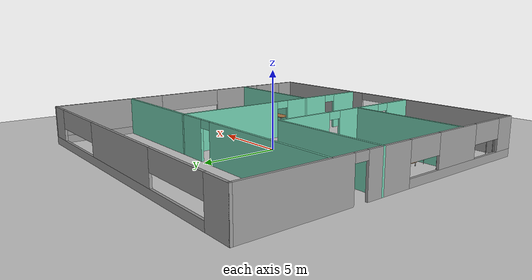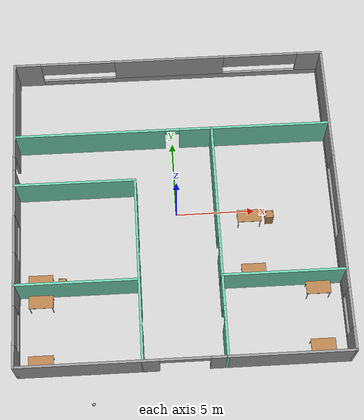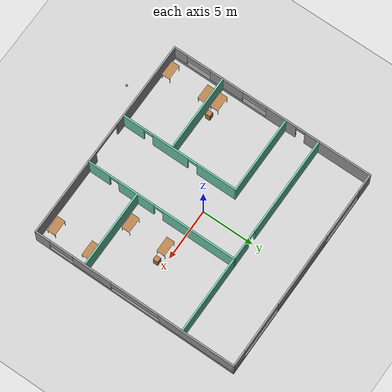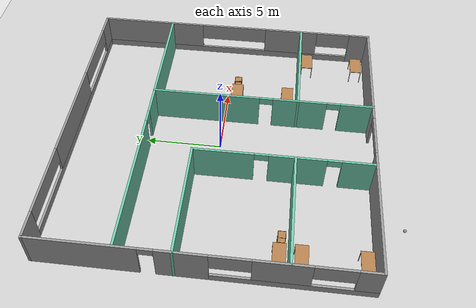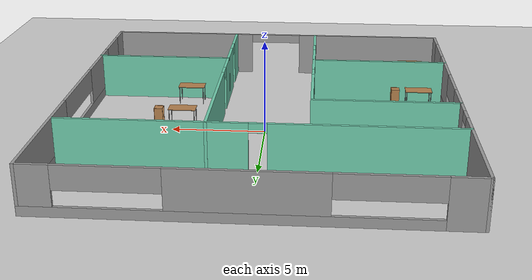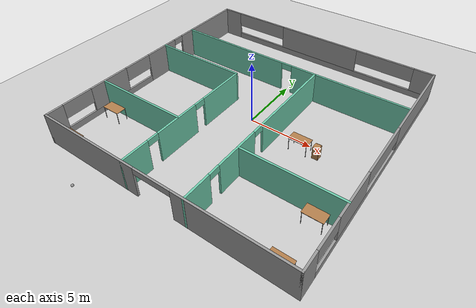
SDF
<sdf version="1.6">
 <world name="default">
  <model name="ground_plane">
   <static>1</static>
   <link name="link">
    <collision name="collision">
     <geometry><plane><normal>0 0 1</normal><size>100 100</size></plane></geometry>
     <surface>
      <contact><collide_bitmask>65535</collide_bitmask></contact>
      <friction><ode><mu>100</mu><mu2>50</mu2></ode></friction>
     </surface>
    </collision>
    <visual name="visual">
     <cast_shadows>0</cast_shadows>
     <geometry><plane><normal>0 0 1</normal><size>100 100</size></plane></geometry>
     <material>
      <script><uri>file://media/materials/scripts/gazebo.material</uri><name>Gazebo/Grey</name></script>
     </material>
    </visual>
   </link>
  </model>
  <model name="Building">
   <pose>0 -0.0025 0 0 -0 0</pose>
   <link name="Wall_0">
    <pose>0 10.0025 0 0 -0 0</pose>
    <visual name="Wall_0_Visual_0">
     <pose>-9.18922 0 1.25 0 -0 0</pose>
     <geometry><box><size>1.77156 0.15 2.5</size></box></geometry>
     <material>
      <script><uri>file://media/materials/scripts/gazebo.material</uri><name>Gazebo/Grey</name></script>
      <ambient>1 1 1 1</ambient>
     </material>
     <meta><layer>0</layer></meta>
    </visual>
    <collision name="Wall_0_Collision_0">
     <geometry><box><size>1.77156 0.15 2.5</size></box></geometry>
     <pose>-9.18922 0 1.25 0 -0 0</pose>
    </collision>
    <visual name="Wall_0_Visual_1">
     <pose>0.885782 0 0.25 0 -0 0</pose>
     <geometry><box><size>18.3784 0.15 0.5</size></box></geometry>
     <material>
      <script><uri>file://media/materials/scripts/gazebo.material</uri><name>Gazebo/Grey</name></script>
      <ambient>1 1 1 1</ambient>
     </material>
     <meta><layer>0</layer></meta>
    </visual>
    <collision name="Wall_0_Collision_1">
     <geometry><box><size>18.3784 0.15 0.5</size></box></geometry>
     <pose>0.885782 0 0.25 0 -0 0</pose>
    </collision>
    <visual name="Wall_0_Visual_2">
     <pose>0.068905 0 1.5 0 -0 0</pose>
     <geometry><box><size>7.14468 0.15 2</size></box></geometry>
     <material>
      <script><uri>file://media/materials/scripts/gazebo.material</uri><name>Gazebo/Grey</name></script>
      <ambient>1 1 1 1</ambient>
     </material>
     <meta><layer>0</layer></meta>
    </visual>
    <collision name="Wall_0_Collision_2">
     <geometry><box><size>7.14468 0.15 2</size></box></geometry>
     <pose>0.068905 0 1.5 0 -0 0</pose>
    </collision>
    <visual name="Wall_0_Visual_3">
     <pose>9.25812 0 1.5 0 -0 0</pose>
     <geometry><box><size>1.63375 0.15 2</size></box></geometry>
     <material>
      <script><uri>file://media/materials/scripts/gazebo.material</uri><name>Gazebo/Grey</name></script>
      <ambient>1 1 1 1</ambient>
     </material>
     <meta><layer>0</layer></meta>
    </visual>
    <collision name="Wall_0_Collision_3">
     <geometry><box><size>1.63375 0.15 2</size></box></geometry>
     <pose>9.25812 0 1.5 0 -0 0</pose>
    </collision>
    <visual name="Wall_0_Visual_4">
     <pose>-5.90344 0 1.9 0 -0 0</pose>
     <geometry><box><size>4.8 0.15 1.2</size></box></geometry>
     <material>
      <script><uri>file://media/materials/scripts/gazebo.material</uri><name>Gazebo/Grey</name></script>
      <ambient>1 1 1 1</ambient>
     </material>
     <meta><layer>0</layer></meta>
    </visual>
    <collision name="Wall_0_Collision_4">
     <geometry><box><size>4.8 0.15 1.2</size></box></geometry>
     <pose>-5.90344 0 1.9 0 -0 0</pose>
    </collision>
    <visual name="Wall_0_Visual_5">
     <pose>6.04125 0 1.9 0 -0 0</pose>
     <geometry><box><size>4.8 0.15 1.2</size></box></geometry>
     <material>
      <script><uri>file://media/materials/scripts/gazebo.material</uri><name>Gazebo/Grey</name></script>
      <ambient>1 1 1 1</ambient>
     </material>
     <meta><layer>0</layer></meta>
    </visual>
    <collision name="Wall_0_Collision_5">
     <geometry><box><size>4.8 0.15 1.2</size></box></geometry>
     <pose>6.04125 0 1.9 0 -0 0</pose>
    </collision>
   </link>
   <link name="Wall_10">
    <pose>-2.5 -4.3225 0 0 -0 1.5708</pose>
    <visual name="Wall_10_Visual_0">
     <pose>-4.63955 0 1.25 0 -0 0</pose>
     <geometry><box><size>2.2209 0.15 2.5</size></box></geometry>
     <material>
      <script><uri>file://media/materials/scripts/gazebo.material</uri><name>Gazebo/Grey</name></script>
      <ambient>0.435294 0.796078 0.67451 1</ambient>
     </material>
     <meta><layer>0</layer></meta>
    </visual>
    <collision name="Wall_10_Collision_0">
     <geometry><box><size>2.2209 0.15 2.5</size></box></geometry>
     <pose>-4.63955 0 1.25 0 -0 0</pose>
    </collision>
    <visual name="Wall_10_Visual_1">
     <pose>-0.81191 0 1.25 0 -0 0</pose>
     <geometry><box><size>3.63439 0.15 2.5</size></box></geometry>
     <material>
      <script><uri>file://media/materials/scripts/gazebo.material</uri><name>Gazebo/Grey</name></script>
      <ambient>0.435294 0.796078 0.67451 1</ambient>
     </material>
     <meta><layer>0</layer></meta>
    </visual>
    <collision name="Wall_10_Collision_1">
     <geometry><box><size>3.63439 0.15 2.5</size></box></geometry>
     <pose>-0.81191 0 1.25 0 -0 0</pose>
    </collision>
    <visual name="Wall_10_Visual_2">
     <pose>3.82764 0 1.25 0 -0 0</pose>
     <geometry><box><size>3.84472 0.15 2.5</size></box></geometry>
     <material>
      <script><uri>file://media/materials/scripts/gazebo.material</uri><name>Gazebo/Grey</name></script>
      <ambient>0.435294 0.796078 0.67451 1</ambient>
     </material>
     <meta><layer>0</layer></meta>
    </visual>
    <collision name="Wall_10_Collision_2">
     <geometry><box><size>3.84472 0.15 2.5</size></box></geometry>
     <pose>3.82764 0 1.25 0 -0 0</pose>
    </collision>
    <visual name="Wall_10_Visual_3">
     <pose>-3.0791 0 2.25 0 -0 0</pose>
     <geometry><box><size>0.9 0.15 0.5</size></box></geometry>
     <material>
      <script><uri>file://media/materials/scripts/gazebo.material</uri><name>Gazebo/Grey</name></script>
      <ambient>0.435294 0.796078 0.67451 1</ambient>
     </material>
     <meta><layer>0</layer></meta>
    </visual>
    <collision name="Wall_10_Collision_3">
     <geometry><box><size>0.9 0.15 0.5</size></box></geometry>
     <pose>-3.0791 0 2.25 0 -0 0</pose>
    </collision>
    <visual name="Wall_10_Visual_4">
     <pose>1.45528 0 2.25 0 -0 0</pose>
     <geometry><box><size>0.9 0.15 0.5</size></box></geometry>
     <material>
      <script><uri>file://media/materials/scripts/gazebo.material</uri><name>Gazebo/Grey</name></script>
      <ambient>0.435294 0.796078 0.67451 1</ambient>
     </material>
     <meta><layer>0</layer></meta>
    </visual>
    <collision name="Wall_10_Collision_4">
     <geometry><box><size>0.9 0.15 0.5</size></box></geometry>
     <pose>1.45528 0 2.25 0 -0 0</pose>
    </collision>
   </link>
   <link name="Wall_12">
    <pose>2.5 -2.5775 0 0 -0 1.5708</pose>
    <visual name="Wall_12_Visual_0">
     <pose>-6.37071 0 1.25 0 -0 0</pose>
     <geometry><box><size>2.25858 0.15 2.5</size></box></geometry>
     <material>
      <script><uri>file://media/materials/scripts/gazebo.material</uri><name>Gazebo/Grey</name></script>
      <ambient>0.435294 0.796078 0.67451 1</ambient>
     </material>
     <meta><layer>0</layer></meta>
    </visual>
    <collision name="Wall_12_Collision_0">
     <geometry><box><size>2.25858 0.15 2.5</size></box></geometry>
     <pose>-6.37071 0 1.25 0 -0 0</pose>
    </collision>
    <visual name="Wall_12_Visual_1">
     <pose>-2.52526 0 1.25 0 -0 0</pose>
     <geometry><box><size>3.63232 0.15 2.5</size></box></geometry>
     <material>
      <script><uri>file://media/materials/scripts/gazebo.material</uri><name>Gazebo/Grey</name></script>
      <ambient>0.435294 0.796078 0.67451 1</ambient>
     </material>
     <meta><layer>0</layer></meta>
    </visual>
    <collision name="Wall_12_Collision_1">
     <geometry><box><size>3.63232 0.15 2.5</size></box></geometry>
     <pose>-2.52526 0 1.25 0 -0 0</pose>
    </collision>
    <visual name="Wall_12_Visual_2">
     <pose>3.84545 0 1.25 0 -0 0</pose>
     <geometry><box><size>7.30909 0.15 2.5</size></box></geometry>
     <material>
      <script><uri>file://media/materials/scripts/gazebo.material</uri><name>Gazebo/Grey</name></script>
      <ambient>0.435294 0.796078 0.67451 1</ambient>
     </material>
     <meta><layer>0</layer></meta>
    </visual>
    <collision name="Wall_12_Collision_2">
     <geometry><box><size>7.30909 0.15 2.5</size></box></geometry>
     <pose>3.84545 0 1.25 0 -0 0</pose>
    </collision>
    <visual name="Wall_12_Visual_3">
     <pose>-4.79142 0 2.25 0 -0 0</pose>
     <geometry><box><size>0.9 0.15 0.5</size></box></geometry>
     <material>
      <script><uri>file://media/materials/scripts/gazebo.material</uri><name>Gazebo/Grey</name></script>
      <ambient>0.435294 0.796078 0.67451 1</ambient>
     </material>
     <meta><layer>0</layer></meta>
    </visual>
    <collision name="Wall_12_Collision_3">
     <geometry><box><size>0.9 0.15 0.5</size></box></geometry>
     <pose>-4.79142 0 2.25 0 -0 0</pose>
    </collision>
    <visual name="Wall_12_Visual_4">
     <pose>-0.259093 0 2.25 0 -0 0</pose>
     <geometry><box><size>0.9 0.15 0.5</size></box></geometry>
     <material>
      <script><uri>file://media/materials/scripts/gazebo.material</uri><name>Gazebo/Grey</name></script>
      <ambient>0.435294 0.796078 0.67451 1</ambient>
     </material>
     <meta><layer>0</layer></meta>
    </visual>
    <collision name="Wall_12_Collision_4">
     <geometry><box><size>0.9 0.15 0.5</size></box></geometry>
     <pose>-0.259093 0 2.25 0 -0 0</pose>
    </collision>
   </link>
   <link name="Wall_14">
    <collision name="Wall_14_Collision">
     <geometry><box><size>7.65 0.15 2.5</size></box></geometry>
     <pose>0 0 1.25 0 -0 0</pose>
    </collision>
    <visual name="Wall_14_Visual">
     <pose>0 0 1.25 0 -0 0</pose>
     <geometry><box><size>7.65 0.15 2.5</size></box></geometry>
     <material>
      <script><uri>file://media/materials/scripts/gazebo.material</uri><name>Gazebo/Grey</name></script>
      <ambient>0.435294 0.796078 0.67451 1</ambient>
     </material>
     <meta><layer>0</layer></meta>
    </visual>
    <pose>-6.25 1.5025 0 0 -0 0</pose>
   </link>
   <link name="Wall_16">
    <collision name="Wall_16_Collision">
     <geometry><box><size>7.65 0.15 2.5</size></box></geometry>
     <pose>0 0 1.25 0 -0 0</pose>
    </collision>
    <visual name="Wall_16_Visual">
     <pose>0 0 1.25 0 -0 0</pose>
     <geometry><box><size>7.65 0.15 2.5</size></box></geometry>
     <material>
      <script><uri>file://media/materials/scripts/gazebo.material</uri><name>Gazebo/Grey</name></script>
      <ambient>0.435294 0.796078 0.67451 1</ambient>
     </material>
     <meta><layer>0</layer></meta>
    </visual>
    <pose>-6.25 -4.9975 0 0 -0 0</pose>
   </link>
   <link name="Wall_18">
    <collision name="Wall_18_Collision">
     <geometry><box><size>7.65 0.15 2.5</size></box></geometry>
     <pose>0 0 1.25 0 -0 0</pose>
    </collision>
    <visual name="Wall_18_Visual">
     <pose>0 0 1.25 0 -0 0</pose>
     <geometry><box><size>7.65 0.15 2.5</size></box></geometry>
     <material>
      <script><uri>file://media/materials/scripts/gazebo.material</uri><name>Gazebo/Grey</name></script>
      <ambient>0.435294 0.796078 0.67451 1</ambient>
     </material>
     <meta><layer>0</layer></meta>
    </visual>
    <pose>6.25 -4.9975 0 0 -0 0</pose>
   </link>
   <link name="Wall_2">
    <pose>-10 0.0025 0 0 0 -1.5708</pose>
    <visual name="Wall_2_Visual_0">
     <pose>-6.7625 0 1.25 0 -0 0</pose>
     <geometry><box><size>6.625 0.15 2.5</size></box></geometry>
     <material>
      <script><uri>file://media/materials/scripts/gazebo.material</uri><name>Gazebo/Grey</name></script>
      <ambient>1 1 1 1</ambient>
     </material>
     <meta><layer>0</layer></meta>
    </visual>
    <collision name="Wall_2_Collision_0">
     <geometry><box><size>6.625 0.15 2.5</size></box></geometry>
     <pose>-6.7625 0 1.25 0 -0 0</pose>
    </collision>
    <visual name="Wall_2_Visual_1">
     <pose>-1.02199 0 1.25 0 -0 0</pose>
     <geometry><box><size>3.05601 0.15 2.5</size></box></geometry>
     <material>
      <script><uri>file://media/materials/scripts/gazebo.material</uri><name>Gazebo/Grey</name></script>
      <ambient>1 1 1 1</ambient>
     </material>
     <meta><layer>0</layer></meta>
    </visual>
    <collision name="Wall_2_Collision_1">
     <geometry><box><size>3.05601 0.15 2.5</size></box></geometry>
     <pose>-1.02199 0 1.25 0 -0 0</pose>
    </collision>
    <visual name="Wall_2_Visual_2">
     <pose>5.29051 0 0.25 0 -0 0</pose>
     <geometry><box><size>9.56899 0.15 0.5</size></box></geometry>
     <material>
      <script><uri>file://media/materials/scripts/gazebo.material</uri><name>Gazebo/Grey</name></script>
      <ambient>1 1 1 1</ambient>
     </material>
     <meta><layer>0</layer></meta>
    </visual>
    <collision name="Wall_2_Collision_2">
     <geometry><box><size>9.56899 0.15 0.5</size></box></geometry>
     <pose>5.29051 0 0.25 0 -0 0</pose>
    </collision>
    <visual name="Wall_2_Visual_3">
     <pose>4.58465 0 1.5 0 -0 0</pose>
     <geometry><box><size>3.35728 0.15 2</size></box></geometry>
     <material>
      <script><uri>file://media/materials/scripts/gazebo.material</uri><name>Gazebo/Grey</name></script>
      <ambient>1 1 1 1</ambient>
     </material>
     <meta><layer>0</layer></meta>
    </visual>
    <collision name="Wall_2_Collision_3">
     <geometry><box><size>3.35728 0.15 2</size></box></geometry>
     <pose>4.58465 0 1.5 0 -0 0</pose>
    </collision>
    <visual name="Wall_2_Visual_4">
     <pose>9.36914 0 1.5 0 -0 0</pose>
     <geometry><box><size>1.41171 0.15 2</size></box></geometry>
     <material>
      <script><uri>file://media/materials/scripts/gazebo.material</uri><name>Gazebo/Grey</name></script>
      <ambient>1 1 1 1</ambient>
     </material>
     <meta><layer>0</layer></meta>
    </visual>
    <collision name="Wall_2_Collision_4">
     <geometry><box><size>1.41171 0.15 2</size></box></geometry>
     <pose>9.36914 0 1.5 0 -0 0</pose>
    </collision>
    <visual name="Wall_2_Visual_5">
     <pose>1.70601 0 1.9 0 -0 0</pose>
     <geometry><box><size>2.4 0.15 1.2</size></box></geometry>
     <material>
      <script><uri>file://media/materials/scripts/gazebo.material</uri><name>Gazebo/Grey</name></script>
      <ambient>1 1 1 1</ambient>
     </material>
     <meta><layer>0</layer></meta>
    </visual>
    <collision name="Wall_2_Collision_5">
     <geometry><box><size>2.4 0.15 1.2</size></box></geometry>
     <pose>1.70601 0 1.9 0 -0 0</pose>
    </collision>
    <visual name="Wall_2_Visual_6">
     <pose>7.46329 0 1.9 0 -0 0</pose>
     <geometry><box><size>2.4 0.15 1.2</size></box></geometry>
     <material>
      <script><uri>file://media/materials/scripts/gazebo.material</uri><name>Gazebo/Grey</name></script>
      <ambient>1 1 1 1</ambient>
     </material>
     <meta><layer>0</layer></meta>
    </visual>
    <collision name="Wall_2_Collision_6">
     <geometry><box><size>2.4 0.15 1.2</size></box></geometry>
     <pose>7.46329 0 1.9 0 -0 0</pose>
    </collision>
    <visual name="Wall_2_Visual_7">
     <pose>-3 0 2.25 0 -0 0</pose>
     <geometry><box><size>0.9 0.15 0.5</size></box></geometry>
     <material>
      <script><uri>file://media/materials/scripts/gazebo.material</uri><name>Gazebo/Grey</name></script>
      <ambient>1 1 1 1</ambient>
     </material>
     <meta><layer>0</layer></meta>
    </visual>
    <collision name="Wall_2_Collision_7">
     <geometry><box><size>0.9 0.15 0.5</size></box></geometry>
     <pose>-3 0 2.25 0 -0 0</pose>
    </collision>
   </link>
   <link name="Wall_4">
    <pose>0 -9.9975 0 0 -0 0</pose>
    <visual name="Wall_4_Visual_0">
     <pose>-5.7875 0 1.25 0 -0 0</pose>
     <geometry><box><size>8.575 0.15 2.5</size></box></geometry>
     <material>
      <script><uri>file://media/materials/scripts/gazebo.material</uri><name>Gazebo/Grey</name></script>
      <ambient>1 1 1 1</ambient>
     </material>
     <meta><layer>0</layer></meta>
    </visual>
    <collision name="Wall_4_Collision_0">
     <geometry><box><size>8.575 0.15 2.5</size></box></geometry>
     <pose>-5.7875 0 1.25 0 -0 0</pose>
    </collision>
    <visual name="Wall_4_Visual_1">
     <pose>5.7875 0 1.25 0 -0 0</pose>
     <geometry><box><size>8.575 0.15 2.5</size></box></geometry>
     <material>
      <script><uri>file://media/materials/scripts/gazebo.material</uri><name>Gazebo/Grey</name></script>
      <ambient>1 1 1 1</ambient>
     </material>
     <meta><layer>0</layer></meta>
    </visual>
    <collision name="Wall_4_Collision_1">
     <geometry><box><size>8.575 0.15 2.5</size></box></geometry>
     <pose>5.7875 0 1.25 0 -0 0</pose>
    </collision>
    <visual name="Wall_4_Visual_2">
     <pose>0 0 2.25 0 -0 0</pose>
     <geometry><box><size>3 0.15 0.5</size></box></geometry>
     <material>
      <script><uri>file://media/materials/scripts/gazebo.material</uri><name>Gazebo/Grey</name></script>
      <ambient>1 1 1 1</ambient>
     </material>
     <meta><layer>0</layer></meta>
    </visual>
    <collision name="Wall_4_Collision_2">
     <geometry><box><size>3 0.15 0.5</size></box></geometry>
     <pose>0 0 2.25 0 -0 0</pose>
    </collision>
   </link>
   <link name="Wall_6">
    <pose>10 0.0025 0 0 -0 1.5708</pose>
    <visual name="Wall_6_Visual_0">
     <pose>-9.33852 0 1.25 0 -0 0</pose>
     <geometry><box><size>1.47296 0.15 2.5</size></box></geometry>
     <material>
      <script><uri>file://media/materials/scripts/gazebo.material</uri><name>Gazebo/Grey</name></script>
      <ambient>1 1 1 1</ambient>
     </material>
     <meta><layer>0</layer></meta>
    </visual>
    <collision name="Wall_6_Collision_0">
     <geometry><box><size>1.47296 0.15 2.5</size></box></geometry>
     <pose>-9.33852 0 1.25 0 -0 0</pose>
    </collision>
    <visual name="Wall_6_Visual_1">
     <pose>0.736479 0 0.25 0 -0 0</pose>
     <geometry><box><size>18.677 0.15 0.5</size></box></geometry>
     <material>
      <script><uri>file://media/materials/scripts/gazebo.material</uri><name>Gazebo/Grey</name></script>
      <ambient>1 1 1 1</ambient>
     </material>
     <meta><layer>0</layer></meta>
    </visual>
    <collision name="Wall_6_Collision_1">
     <geometry><box><size>18.677 0.15 0.5</size></box></geometry>
     <pose>0.736479 0 0.25 0 -0 0</pose>
    </collision>
    <visual name="Wall_6_Visual_2">
     <pose>-4.25062 0 1.5 0 -0 0</pose>
     <geometry><box><size>3.90284 0.15 2</size></box></geometry>
     <material>
      <script><uri>file://media/materials/scripts/gazebo.material</uri><name>Gazebo/Grey</name></script>
      <ambient>1 1 1 1</ambient>
     </material>
     <meta><layer>0</layer></meta>
    </visual>
    <collision name="Wall_6_Collision_2">
     <geometry><box><size>3.90284 0.15 2</size></box></geometry>
     <pose>-4.25062 0 1.5 0 -0 0</pose>
    </collision>
    <visual name="Wall_6_Visual_3">
     <pose>6.2879 0 1.5 0 -0 0</pose>
     <geometry><box><size>7.57421 0.15 2</size></box></geometry>
     <material>
      <script><uri>file://media/materials/scripts/gazebo.material</uri><name>Gazebo/Grey</name></script>
      <ambient>1 1 1 1</ambient>
     </material>
     <meta><layer>0</layer></meta>
    </visual>
    <collision name="Wall_6_Collision_3">
     <geometry><box><size>7.57421 0.15 2</size></box></geometry>
     <pose>6.2879 0 1.5 0 -0 0</pose>
    </collision>
    <visual name="Wall_6_Visual_4">
     <pose>-7.40204 0 1.9 0 -0 0</pose>
     <geometry><box><size>2.4 0.15 1.2</size></box></geometry>
     <material>
      <script><uri>file://media/materials/scripts/gazebo.material</uri><name>Gazebo/Grey</name></script>
      <ambient>1 1 1 1</ambient>
     </material>
     <meta><layer>0</layer></meta>
    </visual>
    <collision name="Wall_6_Collision_4">
     <geometry><box><size>2.4 0.15 1.2</size></box></geometry>
     <pose>-7.40204 0 1.9 0 -0 0</pose>
    </collision>
    <visual name="Wall_6_Visual_5">
     <pose>0.100793 0 1.9 0 -0 0</pose>
     <geometry><box><size>4.8 0.15 1.2</size></box></geometry>
     <material>
      <script><uri>file://media/materials/scripts/gazebo.material</uri><name>Gazebo/Grey</name></script>
      <ambient>1 1 1 1</ambient>
     </material>
     <meta><layer>0</layer></meta>
    </visual>
    <collision name="Wall_6_Collision_5">
     <geometry><box><size>4.8 0.15 1.2</size></box></geometry>
     <pose>0.100793 0 1.9 0 -0 0</pose>
    </collision>
   </link>
   <link name="Wall_8">
    <pose>-0.042815 4.84511 0 0 -0 0</pose>
    <visual name="Wall_8_Visual_0">
     <pose>-5.20359 0 1.25 0 -0 0</pose>
     <geometry><box><size>9.59281 0.15 2.5</size></box></geometry>
     <material>
      <script><uri>file://media/materials/scripts/gazebo.material</uri><name>Gazebo/Grey</name></script>
      <ambient>0.435294 0.796078 0.67451 1</ambient>
     </material>
     <meta><layer>0</layer></meta>
    </visual>
    <collision name="Wall_8_Collision_0">
     <geometry><box><size>9.59281 0.15 2.5</size></box></geometry>
     <pose>-5.20359 0 1.25 0 -0 0</pose>
    </collision>
    <visual name="Wall_8_Visual_1">
     <pose>5.24641 0 1.25 0 -0 0</pose>
     <geometry><box><size>9.50718 0.15 2.5</size></box></geometry>
     <material>
      <script><uri>file://media/materials/scripts/gazebo.material</uri><name>Gazebo/Grey</name></script>
      <ambient>0.435294 0.796078 0.67451 1</ambient>
     </material>
     <meta><layer>0</layer></meta>
    </visual>
    <collision name="Wall_8_Collision_1">
     <geometry><box><size>9.50718 0.15 2.5</size></box></geometry>
     <pose>5.24641 0 1.25 0 -0 0</pose>
    </collision>
    <visual name="Wall_8_Visual_2">
     <pose>0.042815 0 2.25 0 -0 0</pose>
     <geometry><box><size>0.9 0.15 0.5</size></box></geometry>
     <material>
      <script><uri>file://media/materials/scripts/gazebo.material</uri><name>Gazebo/Grey</name></script>
      <ambient>0.435294 0.796078 0.67451 1</ambient>
     </material>
     <meta><layer>0</layer></meta>
    </visual>
    <collision name="Wall_8_Collision_2">
     <geometry><box><size>0.9 0.15 0.5</size></box></geometry>
     <pose>0.042815 0 2.25 0 -0 0</pose>
    </collision>
   </link>
   <static>1</static>
  </model>
  <model name="table_0">
   <static>1</static>
   <link name="link">
    <collision name="surface">
     <pose>0 0 1 0 -0 0</pose>
     <geometry><box><size>1.5 0.8 0.03</size></box></geometry>
     <surface><friction><ode><mu>0.6</mu><mu2>0.6</mu2></ode></friction></surface>
    </collision>
    <visual name="visual1">
     <pose>0 0 1 0 -0 0</pose>
     <geometry><box><size>1.5 0.8 0.03</size></box></geometry>
     <material>
      <script><uri>file://media/materials/scripts/gazebo.material</uri><name>Gazebo/Wood</name></script>
     </material>
    </visual>
    <collision name="front_left_leg">
     <pose>0.68 0.38 0.5 0 -0 0</pose>
     <geometry><cylinder><radius>0.02</radius><length>1</length></cylinder></geometry>
    </collision>
    <visual name="front_left_leg">
     <pose>0.68 0.38 0.5 0 -0 0</pose>
     <geometry><cylinder><radius>0.02</radius><length>1</length></cylinder></geometry>
     <material>
      <script><uri>file://media/materials/scripts/gazebo.material</uri><name>Gazebo/Grey</name></script>
     </material>
    </visual>
    <collision name="front_right_leg">
     <pose>0.68 -0.38 0.5 0 -0 0</pose>
     <geometry><cylinder><radius>0.02</radius><length>1</length></cylinder></geometry>
    </collision>
    <visual name="front_right_leg">
     <pose>0.68 -0.38 0.5 0 -0 0</pose>
     <geometry><cylinder><radius>0.02</radius><length>1</length></cylinder></geometry>
     <material>
      <script><uri>file://media/materials/scripts/gazebo.material</uri><name>Gazebo/Grey</name></script>
     </material>
    </visual>
    <collision name="back_right_leg">
     <pose>-0.68 -0.38 0.5 0 -0 0</pose>
     <geometry><cylinder><radius>0.02</radius><length>1</length></cylinder></geometry>
    </collision>
    <visual name="back_right_leg">
     <pose>-0.68 -0.38 0.5 0 -0 0</pose>
     <geometry><cylinder><radius>0.02</radius><length>1</length></cylinder></geometry>
     <material>
      <script><uri>file://media/materials/scripts/gazebo.material</uri><name>Gazebo/Grey</name></script>
     </material>
    </visual>
    <collision name="back_left_leg">
     <pose>-0.68 0.38 0.5 0 -0 0</pose>
     <geometry><cylinder><radius>0.02</radius><length>1</length></cylinder></geometry>
    </collision>
    <visual name="back_left_leg">
     <pose>-0.68 0.38 0.5 0 -0 0</pose>
     <geometry><cylinder><radius>0.02</radius><length>1</length></cylinder></geometry>
     <material>
      <script><uri>file://media/materials/scripts/gazebo.material</uri><name>Gazebo/Grey</name></script>
     </material>
    </visual>
   </link>
   <pose>-8.54272 -4.37684 0 0 -0 0</pose>
  </model>
  <model name="table_1">
   <static>1</static>
   <link name="link">
    <collision name="surface">
     <pose>0 0 1 0 -0 0</pose>
     <geometry><box><size>1.5 0.8 0.03</size></box></geometry>
     <surface><friction><ode><mu>0.6</mu><mu2>0.6</mu2></ode></friction></surface>
    </collision>
    <visual name="visual1">
     <pose>0 0 1 0 -0 0</pose>
     <geometry><box><size>1.5 0.8 0.03</size></box></geometry>
     <material>
      <script><uri>file://media/materials/scripts/gazebo.material</uri><name>Gazebo/Wood</name></script>
     </material>
    </visual>
    <collision name="front_left_leg">
     <pose>0.68 0.38 0.5 0 -0 0</pose>
     <geometry><cylinder><radius>0.02</radius><length>1</length></cylinder></geometry>
    </collision>
    <visual name="front_left_leg">
     <pose>0.68 0.38 0.5 0 -0 0</pose>
     <geometry><cylinder><radius>0.02</radius><length>1</length></cylinder></geometry>
     <material>
      <script><uri>file://media/materials/scripts/gazebo.material</uri><name>Gazebo/Grey</name></script>
     </material>
    </visual>
    <collision name="front_right_leg">
     <pose>0.68 -0.38 0.5 0 -0 0</pose>
     <geometry><cylinder><radius>0.02</radius><length>1</length></cylinder></geometry>
    </collision>
    <visual name="front_right_leg">
     <pose>0.68 -0.38 0.5 0 -0 0</pose>
     <geometry><cylinder><radius>0.02</radius><length>1</length></cylinder></geometry>
     <material>
      <script><uri>file://media/materials/scripts/gazebo.material</uri><name>Gazebo/Grey</name></script>
     </material>
    </visual>
    <collision name="back_right_leg">
     <pose>-0.68 -0.38 0.5 0 -0 0</pose>
     <geometry><cylinder><radius>0.02</radius><length>1</length></cylinder></geometry>
    </collision>
    <visual name="back_right_leg">
     <pose>-0.68 -0.38 0.5 0 -0 0</pose>
     <geometry><cylinder><radius>0.02</radius><length>1</length></cylinder></geometry>
     <material>
      <script><uri>file://media/materials/scripts/gazebo.material</uri><name>Gazebo/Grey</name></script>
     </material>
    </visual>
    <collision name="back_left_leg">
     <pose>-0.68 0.38 0.5 0 -0 0</pose>
     <geometry><cylinder><radius>0.02</radius><length>1</length></cylinder></geometry>
    </collision>
    <visual name="back_left_leg">
     <pose>-0.68 0.38 0.5 0 -0 0</pose>
     <geometry><cylinder><radius>0.02</radius><length>1</length></cylinder></geometry>
     <material>
      <script><uri>file://media/materials/scripts/gazebo.material</uri><name>Gazebo/Grey</name></script>
     </material>
    </visual>
   </link>
   <pose>-8.53135 -5.67134 0 0 -0 0</pose>
  </model>
  <model name="table_2">
   <static>1</static>
   <link name="link">
    <collision name="surface">
     <pose>0 0 1 0 -0 0</pose>
     <geometry><box><size>1.5 0.8 0.03</size></box></geometry>
     <surface><friction><ode><mu>0.6</mu><mu2>0.6</mu2></ode></friction></surface>
    </collision>
    <visual name="visual1">
     <pose>0 0 1 0 -0 0</pose>
     <geometry><box><size>1.5 0.8 0.03</size></box></geometry>
     <material>
      <script><uri>file://media/materials/scripts/gazebo.material</uri><name>Gazebo/Wood</name></script>
     </material>
    </visual>
    <collision name="front_left_leg">
     <pose>0.68 0.38 0.5 0 -0 0</pose>
     <geometry><cylinder><radius>0.02</radius><length>1</length></cylinder></geometry>
    </collision>
    <visual name="front_left_leg">
     <pose>0.68 0.38 0.5 0 -0 0</pose>
     <geometry><cylinder><radius>0.02</radius><length>1</length></cylinder></geometry>
     <material>
      <script><uri>file://media/materials/scripts/gazebo.material</uri><name>Gazebo/Grey</name></script>
     </material>
    </visual>
    <collision name="front_right_leg">
     <pose>0.68 -0.38 0.5 0 -0 0</pose>
     <geometry><cylinder><radius>0.02</radius><length>1</length></cylinder></geometry>
    </collision>
    <visual name="front_right_leg">
     <pose>0.68 -0.38 0.5 0 -0 0</pose>
     <geometry><cylinder><radius>0.02</radius><length>1</length></cylinder></geometry>
     <material>
      <script><uri>file://media/materials/scripts/gazebo.material</uri><name>Gazebo/Grey</name></script>
     </material>
    </visual>
    <collision name="back_right_leg">
     <pose>-0.68 -0.38 0.5 0 -0 0</pose>
     <geometry><cylinder><radius>0.02</radius><length>1</length></cylinder></geometry>
    </collision>
    <visual name="back_right_leg">
     <pose>-0.68 -0.38 0.5 0 -0 0</pose>
     <geometry><cylinder><radius>0.02</radius><length>1</length></cylinder></geometry>
     <material>
      <script><uri>file://media/materials/scripts/gazebo.material</uri><name>Gazebo/Grey</name></script>
     </material>
    </visual>
    <collision name="back_left_leg">
     <pose>-0.68 0.38 0.5 0 -0 0</pose>
     <geometry><cylinder><radius>0.02</radius><length>1</length></cylinder></geometry>
    </collision>
    <visual name="back_left_leg">
     <pose>-0.68 0.38 0.5 0 -0 0</pose>
     <geometry><cylinder><radius>0.02</radius><length>1</length></cylinder></geometry>
     <material>
      <script><uri>file://media/materials/scripts/gazebo.material</uri><name>Gazebo/Grey</name></script>
     </material>
    </visual>
   </link>
   <pose>-8.54251 -9.41407 0 0 -0 0</pose>
  </model>
  <model name="table_3">
   <static>1</static>
   <link name="link">
    <collision name="surface">
     <pose>0 0 1 0 -0 0</pose>
     <geometry><box><size>1.5 0.8 0.03</size></box></geometry>
     <surface><friction><ode><mu>0.6</mu><mu2>0.6</mu2></ode></friction></surface>
    </collision>
    <visual name="visual1">
     <pose>0 0 1 0 -0 0</pose>
     <geometry><box><size>1.5 0.8 0.03</size></box></geometry>
     <material>
      <script><uri>file://media/materials/scripts/gazebo.material</uri><name>Gazebo/Wood</name></script>
     </material>
    </visual>
    <collision name="front_left_leg">
     <pose>0.68 0.38 0.5 0 -0 0</pose>
     <geometry><cylinder><radius>0.02</radius><length>1</length></cylinder></geometry>
    </collision>
    <visual name="front_left_leg">
     <pose>0.68 0.38 0.5 0 -0 0</pose>
     <geometry><cylinder><radius>0.02</radius><length>1</length></cylinder></geometry>
     <material>
      <script><uri>file://media/materials/scripts/gazebo.material</uri><name>Gazebo/Grey</name></script>
     </material>
    </visual>
    <collision name="front_right_leg">
     <pose>0.68 -0.38 0.5 0 -0 0</pose>
     <geometry><cylinder><radius>0.02</radius><length>1</length></cylinder></geometry>
    </collision>
    <visual name="front_right_leg">
     <pose>0.68 -0.38 0.5 0 -0 0</pose>
     <geometry><cylinder><radius>0.02</radius><length>1</length></cylinder></geometry>
     <material>
      <script><uri>file://media/materials/scripts/gazebo.material</uri><name>Gazebo/Grey</name></script>
     </material>
    </visual>
    <collision name="back_right_leg">
     <pose>-0.68 -0.38 0.5 0 -0 0</pose>
     <geometry><cylinder><radius>0.02</radius><length>1</length></cylinder></geometry>
    </collision>
    <visual name="back_right_leg">
     <pose>-0.68 -0.38 0.5 0 -0 0</pose>
     <geometry><cylinder><radius>0.02</radius><length>1</length></cylinder></geometry>
     <material>
      <script><uri>file://media/materials/scripts/gazebo.material</uri><name>Gazebo/Grey</name></script>
     </material>
    </visual>
    <collision name="back_left_leg">
     <pose>-0.68 0.38 0.5 0 -0 0</pose>
     <geometry><cylinder><radius>0.02</radius><length>1</length></cylinder></geometry>
    </collision>
    <visual name="back_left_leg">
     <pose>-0.68 0.38 0.5 0 -0 0</pose>
     <geometry><cylinder><radius>0.02</radius><length>1</length></cylinder></geometry>
     <material>
      <script><uri>file://media/materials/scripts/gazebo.material</uri><name>Gazebo/Grey</name></script>
     </material>
    </visual>
   </link>
   <pose>8.39727 -5.61519 0 0 -0 0</pose>
  </model>
  <model name="table_4">
   <static>1</static>
   <link name="link">
    <collision name="surface">
     <pose>0 0 1 0 -0 0</pose>
     <geometry><box><size>1.5 0.8 0.03</size></box></geometry>
     <surface><friction><ode><mu>0.6</mu><mu2>0.6</mu2></ode></friction></surface>
    </collision>
    <visual name="visual1">
     <pose>0 0 1 0 -0 0</pose>
     <geometry><box><size>1.5 0.8 0.03</size></box></geometry>
     <material>
      <script><uri>file://media/materials/scripts/gazebo.material</uri><name>Gazebo/Wood</name></script>
     </material>
    </visual>
    <collision name="front_left_leg">
     <pose>0.68 0.38 0.5 0 -0 0</pose>
     <geometry><cylinder><radius>0.02</radius><length>1</length></cylinder></geometry>
    </collision>
    <visual name="front_left_leg">
     <pose>0.68 0.38 0.5 0 -0 0</pose>
     <geometry><cylinder><radius>0.02</radius><length>1</length></cylinder></geometry>
     <material>
      <script><uri>file://media/materials/scripts/gazebo.material</uri><name>Gazebo/Grey</name></script>
     </material>
    </visual>
    <collision name="front_right_leg">
     <pose>0.68 -0.38 0.5 0 -0 0</pose>
     <geometry><cylinder><radius>0.02</radius><length>1</length></cylinder></geometry>
    </collision>
    <visual name="front_right_leg">
     <pose>0.68 -0.38 0.5 0 -0 0</pose>
     <geometry><cylinder><radius>0.02</radius><length>1</length></cylinder></geometry>
     <material>
      <script><uri>file://media/materials/scripts/gazebo.material</uri><name>Gazebo/Grey</name></script>
     </material>
    </visual>
    <collision name="back_right_leg">
     <pose>-0.68 -0.38 0.5 0 -0 0</pose>
     <geometry><cylinder><radius>0.02</radius><length>1</length></cylinder></geometry>
    </collision>
    <visual name="back_right_leg">
     <pose>-0.68 -0.38 0.5 0 -0 0</pose>
     <geometry><cylinder><radius>0.02</radius><length>1</length></cylinder></geometry>
     <material>
      <script><uri>file://media/materials/scripts/gazebo.material</uri><name>Gazebo/Grey</name></script>
     </material>
    </visual>
    <collision name="back_left_leg">
     <pose>-0.68 0.38 0.5 0 -0 0</pose>
     <geometry><cylinder><radius>0.02</radius><length>1</length></cylinder></geometry>
    </collision>
    <visual name="back_left_leg">
     <pose>-0.68 0.38 0.5 0 -0 0</pose>
     <geometry><cylinder><radius>0.02</radius><length>1</length></cylinder></geometry>
     <material>
      <script><uri>file://media/materials/scripts/gazebo.material</uri><name>Gazebo/Grey</name></script>
     </material>
    </visual>
   </link>
   <pose>8.32406 -9.22945 0 0 -0 0</pose>
  </model>
  <model name="table_7">
   <static>1</static>
   <link name="link">
    <collision name="surface">
     <pose>0 0 1 0 -0 0</pose>
     <geometry><box><size>1.5 0.8 0.03</size></box></geometry>
     <surface><friction><ode><mu>0.6</mu><mu2>0.6</mu2></ode></friction></surface>
    </collision>
    <visual name="visual1">
     <pose>0 0 1 0 -0 0</pose>
     <geometry><box><size>1.5 0.8 0.03</size></box></geometry>
     <material>
      <script><uri>file://media/materials/scripts/gazebo.material</uri><name>Gazebo/Wood</name></script>
     </material>
    </visual>
    <collision name="front_left_leg">
     <pose>0.68 0.38 0.5 0 -0 0</pose>
     <geometry><cylinder><radius>0.02</radius><length>1</length></cylinder></geometry>
    </collision>
    <visual name="front_left_leg">
     <pose>0.68 0.38 0.5 0 -0 0</pose>
     <geometry><cylinder><radius>0.02</radius><length>1</length></cylinder></geometry>
     <material>
      <script><uri>file://media/materials/scripts/gazebo.material</uri><name>Gazebo/Grey</name></script>
     </material>
    </visual>
    <collision name="front_right_leg">
     <pose>0.68 -0.38 0.5 0 -0 0</pose>
     <geometry><cylinder><radius>0.02</radius><length>1</length></cylinder></geometry>
    </collision>
    <visual name="front_right_leg">
     <pose>0.68 -0.38 0.5 0 -0 0</pose>
     <geometry><cylinder><radius>0.02</radius><length>1</length></cylinder></geometry>
     <material>
      <script><uri>file://media/materials/scripts/gazebo.material</uri><name>Gazebo/Grey</name></script>
     </material>
    </visual>
    <collision name="back_right_leg">
     <pose>-0.68 -0.38 0.5 0 -0 0</pose>
     <geometry><cylinder><radius>0.02</radius><length>1</length></cylinder></geometry>
    </collision>
    <visual name="back_right_leg">
     <pose>-0.68 -0.38 0.5 0 -0 0</pose>
     <geometry><cylinder><radius>0.02</radius><length>1</length></cylinder></geometry>
     <material>
      <script><uri>file://media/materials/scripts/gazebo.material</uri><name>Gazebo/Grey</name></script>
     </material>
    </visual>
    <collision name="back_left_leg">
     <pose>-0.68 0.38 0.5 0 -0 0</pose>
     <geometry><cylinder><radius>0.02</radius><length>1</length></cylinder></geometry>
    </collision>
    <visual name="back_left_leg">
     <pose>-0.68 0.38 0.5 0 -0 0</pose>
     <geometry><cylinder><radius>0.02</radius><length>1</length></cylinder></geometry>
     <material>
      <script><uri>file://media/materials/scripts/gazebo.material</uri><name>Gazebo/Grey</name></script>
     </material>
    </visual>
   </link>
   <pose>4.5428 -0.688026 0 0 -0 0</pose>
  </model>
  <model name="table_8">
   <static>1</static>
   <link name="link">
    <collision name="surface">
     <pose>0 0 1 0 -0 0</pose>
     <geometry><box><size>1.5 0.8 0.03</size></box></geometry>
     <surface><friction><ode><mu>0.6</mu><mu2>0.6</mu2></ode></friction></surface>
    </collision>
    <visual name="visual1">
     <pose>0 0 1 0 -0 0</pose>
     <geometry><box><size>1.5 0.8 0.03</size></box></geometry>
     <material>
      <script><uri>file://media/materials/scripts/gazebo.material</uri><name>Gazebo/Wood</name></script>
     </material>
    </visual>
    <collision name="front_left_leg">
     <pose>0.68 0.38 0.5 0 -0 0</pose>
     <geometry><cylinder><radius>0.02</radius><length>1</length></cylinder></geometry>
    </collision>
    <visual name="front_left_leg">
     <pose>0.68 0.38 0.5 0 -0 0</pose>
     <geometry><cylinder><radius>0.02</radius><length>1</length></cylinder></geometry>
     <material>
      <script><uri>file://media/materials/scripts/gazebo.material</uri><name>Gazebo/Grey</name></script>
     </material>
    </visual>
    <collision name="front_right_leg">
     <pose>0.68 -0.38 0.5 0 -0 0</pose>
     <geometry><cylinder><radius>0.02</radius><length>1</length></cylinder></geometry>
    </collision>
    <visual name="front_right_leg">
     <pose>0.68 -0.38 0.5 0 -0 0</pose>
     <geometry><cylinder><radius>0.02</radius><length>1</length></cylinder></geometry>
     <material>
      <script><uri>file://media/materials/scripts/gazebo.material</uri><name>Gazebo/Grey</name></script>
     </material>
    </visual>
    <collision name="back_right_leg">
     <pose>-0.68 -0.38 0.5 0 -0 0</pose>
     <geometry><cylinder><radius>0.02</radius><length>1</length></cylinder></geometry>
    </collision>
    <visual name="back_right_leg">
     <pose>-0.68 -0.38 0.5 0 -0 0</pose>
     <geometry><cylinder><radius>0.02</radius><length>1</length></cylinder></geometry>
     <material>
      <script><uri>file://media/materials/scripts/gazebo.material</uri><name>Gazebo/Grey</name></script>
     </material>
    </visual>
    <collision name="back_left_leg">
     <pose>-0.68 0.38 0.5 0 -0 0</pose>
     <geometry><cylinder><radius>0.02</radius><length>1</length></cylinder></geometry>
    </collision>
    <visual name="back_left_leg">
     <pose>-0.68 0.38 0.5 0 -0 0</pose>
     <geometry><cylinder><radius>0.02</radius><length>1</length></cylinder></geometry>
     <material>
      <script><uri>file://media/materials/scripts/gazebo.material</uri><name>Gazebo/Grey</name></script>
     </material>
    </visual>
   </link>
   <pose>4.55416 -4.27473 0 0 -0 0</pose>
  </model>
  <model name="cabinet">
   <static>1</static>
   <link name="cabinet_bottom_plate">
    <inertial>
     <pose>0 0 -1 0 -0 0</pose>
     <inertia><ixx>2.05</ixx><ixy>0</ixy><ixz>0</ixz><iyy>2.05</iyy><iyz>0</iyz><izz>2.05</izz></inertia>
     <mass>25</mass>
    </inertial>
    <collision name="cabinet_bottom_plate_geom">
     <pose>0 0 0.01 0 -0 0</pose>
     <geometry><box><size>0.45 0.45 0.02</size></box></geometry>
    </collision>
    <visual name="cabinet_bottom_plate_geom_visual">
     <pose>0 0 0.01 0 -0 0</pose>
     <geometry><box><size>0.45 0.45 0.02</size></box></geometry>
     <material>
      <script><uri>file://media/materials/scripts/gazebo.material</uri><name>Gazebo/Wood</name></script>
     </material>
    </visual>
    <collision name="cabinet_bottom_plate_geom_cabinet_back_plate">
     <pose>0.235 0 0.51 0 -0 0</pose>
     <geometry><box><size>0.02 0.45 1.02</size></box></geometry>
    </collision>
    <visual name="cabinet_bottom_plate_geom_cabinet_back_plate_visual">
     <pose>0.235 0 0.51 0 -0 0</pose>
     <geometry><box><size>0.02 0.45 1.02</size></box></geometry>
     <material>
      <script><uri>file://media/materials/scripts/gazebo.material</uri><name>Gazebo/Wood</name></script>
     </material>
    </visual>
    <collision name="cabinet_bottom_plate_geom_cabinet_left_plate">
     <pose>0 0.235 0.51 0 -0 0</pose>
     <geometry><box><size>0.45 0.02 1.02</size></box></geometry>
    </collision>
    <visual name="cabinet_bottom_plate_geom_cabinet_left_plate_visual">
     <pose>0 0.235 0.51 0 -0 0</pose>
     <geometry><box><size>0.45 0.02 1.02</size></box></geometry>
     <material>
      <script><uri>file://media/materials/scripts/gazebo.material</uri><name>Gazebo/Wood</name></script>
     </material>
    </visual>
    <collision name="cabinet_bottom_plate_geom_cabinet_middle_plate">
     <pose>0 0 0.51 0 -0 0</pose>
     <geometry><box><size>0.45 0.45 0.02</size></box></geometry>
    </collision>
    <visual name="cabinet_bottom_plate_geom_cabinet_middle_plate_visual">
     <pose>0 0 0.51 0 -0 0</pose>
     <geometry><box><size>0.45 0.45 0.02</size></box></geometry>
     <material>
      <script><uri>file://media/materials/scripts/gazebo.material</uri><name>Gazebo/Wood</name></script>
     </material>
    </visual>
    <collision name="cabinet_bottom_plate_geom_cabinet_right_plate">
     <pose>0 -0.235 0.51 0 -0 0</pose>
     <geometry><box><size>0.45 0.02 1.02</size></box></geometry>
    </collision>
    <visual name="cabinet_bottom_plate_geom_cabinet_right_plate_visual">
     <pose>0 -0.235 0.51 0 -0 0</pose>
     <geometry><box><size>0.45 0.02 1.02</size></box></geometry>
     <material>
      <script><uri>file://media/materials/scripts/gazebo.material</uri><name>Gazebo/Wood</name></script>
     </material>
    </visual>
    <collision name="cabinet_bottom_plate_geom_cabinet_top_plate">
     <pose>0 0 1.01 0 -0 0</pose>
     <geometry><box><size>0.45 0.45 0.02</size></box></geometry>
    </collision>
    <visual name="cabinet_bottom_plate_geom_cabinet_top_plate_visual">
     <pose>0 0 1.01 0 -0 0</pose>
     <geometry><box><size>0.45 0.45 0.02</size></box></geometry>
     <material>
      <script><uri>file://media/materials/scripts/gazebo.material</uri><name>Gazebo/Wood</name></script>
     </material>
    </visual>
   </link>
   <pose>-7.22639 -4.47942 0 0 -0 0</pose>
  </model>
  <model name="cabinet_2">
   <static>1</static>
   <link name="cabinet_bottom_plate">
    <inertial>
     <pose>0 0 -1 0 -0 0</pose>
     <inertia><ixx>2.05</ixx><ixy>0</ixy><ixz>0</ixz><iyy>2.05</iyy><iyz>0</iyz><izz>2.05</izz></inertia>
     <mass>25</mass>
    </inertial>
    <collision name="cabinet_bottom_plate_geom">
     <pose>0 0 0.01 0 -0 0</pose>
     <geometry><box><size>0.45 0.45 0.02</size></box></geometry>
    </collision>
    <visual name="cabinet_bottom_plate_geom_visual">
     <pose>0 0 0.01 0 -0 0</pose>
     <geometry><box><size>0.45 0.45 0.02</size></box></geometry>
     <material>
      <script><uri>file://media/materials/scripts/gazebo.material</uri><name>Gazebo/Wood</name></script>
     </material>
    </visual>
    <collision name="cabinet_bottom_plate_geom_cabinet_back_plate">
     <pose>0.235 0 0.51 0 -0 0</pose>
     <geometry><box><size>0.02 0.45 1.02</size></box></geometry>
    </collision>
    <visual name="cabinet_bottom_plate_geom_cabinet_back_plate_visual">
     <pose>0.235 0 0.51 0 -0 0</pose>
     <geometry><box><size>0.02 0.45 1.02</size></box></geometry>
     <material>
      <script><uri>file://media/materials/scripts/gazebo.material</uri><name>Gazebo/Wood</name></script>
     </material>
    </visual>
    <collision name="cabinet_bottom_plate_geom_cabinet_left_plate">
     <pose>0 0.235 0.51 0 -0 0</pose>
     <geometry><box><size>0.45 0.02 1.02</size></box></geometry>
    </collision>
    <visual name="cabinet_bottom_plate_geom_cabinet_left_plate_visual">
     <pose>0 0.235 0.51 0 -0 0</pose>
     <geometry><box><size>0.45 0.02 1.02</size></box></geometry>
     <material>
      <script><uri>file://media/materials/scripts/gazebo.material</uri><name>Gazebo/Wood</name></script>
     </material>
    </visual>
    <collision name="cabinet_bottom_plate_geom_cabinet_middle_plate">
     <pose>0 0 0.51 0 -0 0</pose>
     <geometry><box><size>0.45 0.45 0.02</size></box></geometry>
    </collision>
    <visual name="cabinet_bottom_plate_geom_cabinet_middle_plate_visual">
     <pose>0 0 0.51 0 -0 0</pose>
     <geometry><box><size>0.45 0.45 0.02</size></box></geometry>
     <material>
      <script><uri>file://media/materials/scripts/gazebo.material</uri><name>Gazebo/Wood</name></script>
     </material>
    </visual>
    <collision name="cabinet_bottom_plate_geom_cabinet_right_plate">
     <pose>0 -0.235 0.51 0 -0 0</pose>
     <geometry><box><size>0.45 0.02 1.02</size></box></geometry>
    </collision>
    <visual name="cabinet_bottom_plate_geom_cabinet_right_plate_visual">
     <pose>0 -0.235 0.51 0 -0 0</pose>
     <geometry><box><size>0.45 0.02 1.02</size></box></geometry>
     <material>
      <script><uri>file://media/materials/scripts/gazebo.material</uri><name>Gazebo/Wood</name></script>
     </material>
    </visual>
    <collision name="cabinet_bottom_plate_geom_cabinet_top_plate">
     <pose>0 0 1.01 0 -0 0</pose>
     <geometry><box><size>0.45 0.45 0.02</size></box></geometry>
    </collision>
    <visual name="cabinet_bottom_plate_geom_cabinet_top_plate_visual">
     <pose>0 0 1.01 0 -0 0</pose>
     <geometry><box><size>0.45 0.45 0.02</size></box></geometry>
     <material>
      <script><uri>file://media/materials/scripts/gazebo.material</uri><name>Gazebo/Wood</name></script>
     </material>
    </visual>
   </link>
   <pose>5.82898 -0.658601 0 0 -0 0</pose>
  </model>
  <model name="my_ball">
   <link name="link">
    <inertial>
     <mass>1</mass>
     <inertia><ixx>0.1</ixx><ixy>0</ixy><ixz>0</ixz><iyy>0.1</iyy><iyz>0</iyz><izz>0.1</izz></inertia>
    </inertial>
    <visual name="visual">
     <geometry><sphere><radius>0.1</radius></sphere></geometry>
     <material>
      <script><name>Gazebo/Grey</name><uri>file://media/materials/scripts/gazebo.material</uri></script>
      <shader type="pixel"><normal_map>__default__</normal_map></shader>
      <ambient>1 1 1 1</ambient>
      <diffuse>1 1 1 1</diffuse>
      <specular>1 1 1 1</specular>
      <emissive>1 1 1 1</emissive>
     </material>
    </visual>
    <collision name="collision">
     <geometry><sphere><radius>0.1</radius></sphere></geometry>
     <surface>
      <friction>
       <ode><mu>1</mu><mu2>1</mu2><fdir1>0 0 0</fdir1><slip1>0</slip1><slip2>0</slip2></ode>
       <torsional>
        <coefficient>1</coefficient>
        <patch_radius>0</patch_radius>
        <surface_radius>0</surface_radius>
        <use_patch_radius>1</use_patch_radius>
        <ode><slip>0</slip></ode>
       </torsional>
      </friction>
      <bounce><restitution_coefficient>0</restitution_coefficient><threshold>1e+06</threshold></bounce>
      <contact>
       <collide_without_contact>0</collide_without_contact>
       <collide_without_contact_bitmask>1</collide_without_contact_bitmask>
       <collide_bitmask>1</collide_bitmask>
       <ode>
        <soft_cfm>0</soft_cfm>
        <soft_erp>0.2</soft_erp>
        <kp>1e+13</kp>
        <kd>1</kd>
        <max_vel>0.01</max_vel>
        <min_depth>0</min_depth>
       </ode>
       <bullet>
        <split_impulse>1</split_impulse>
        <split_impulse_penetration_threshold>-0.01</split_impulse_penetration_threshold>
        <soft_cfm>0</soft_cfm>
        <soft_erp>0.2</soft_erp>
        <kp>1e+13</kp>
        <kd>1</kd>
       </bullet>
      </contact>
     </surface>
    </collision>
   </link>
   <static>0</static>
   <pose>-5.52397 -11.9024 0.1 0 -0 0</pose>
  </model>
 </world>
</sdf>
